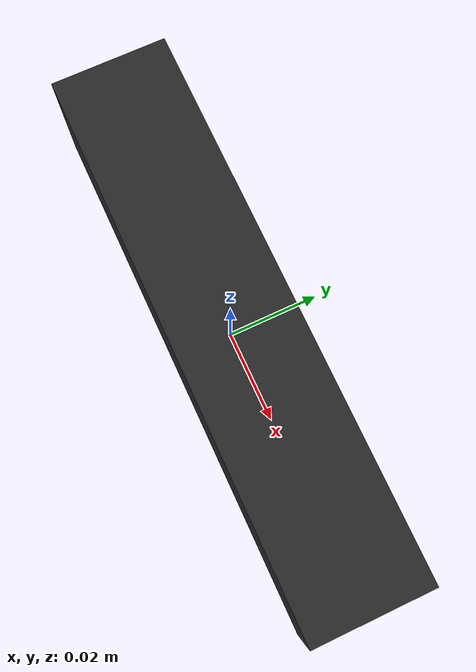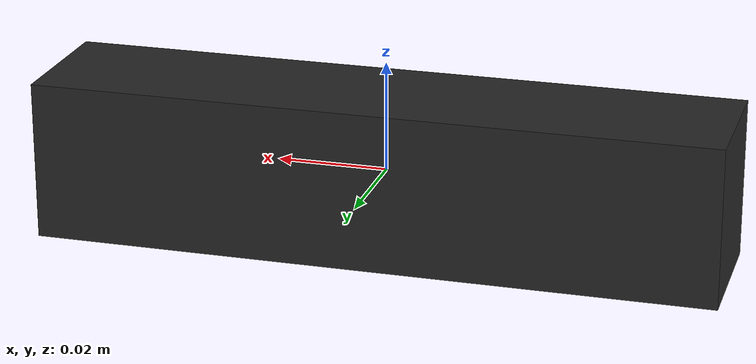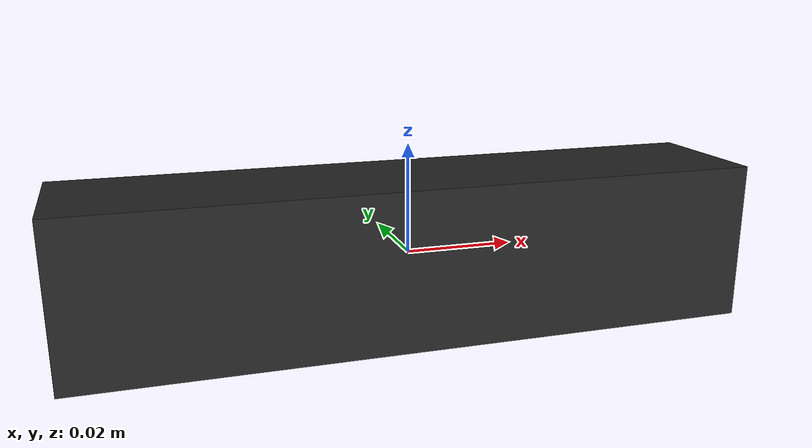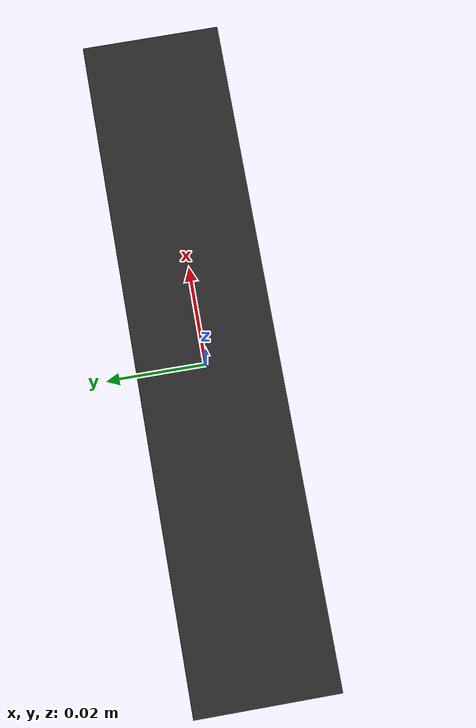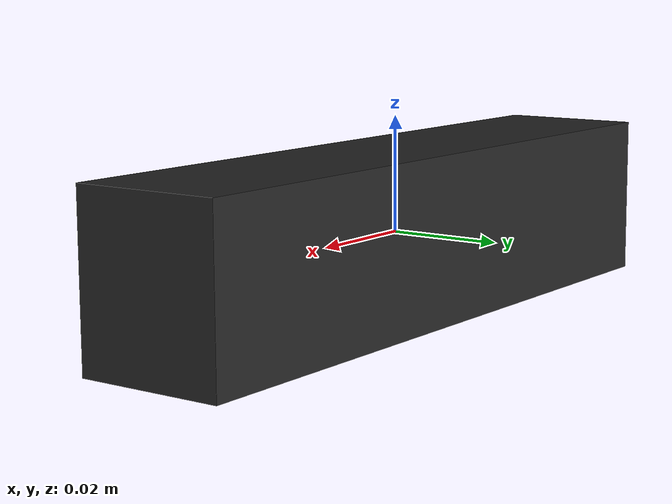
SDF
<?xml version="1.0" encoding="UTF-8"?>
<sdf version="1.9">
  <model name="d455">
    <link name="d455_link">
      <inertial>
        <mass>0.072</mass>
        <inertia>
          <ixx>4.0e-5</ixx><ixy>0</ixy><ixz>0</ixz>
          <iyy>1.3e-5</iyy><iyz>0</iyz><izz>4.5e-5</izz>
        </inertia>
      </inertial>
      <visual name="d455_visual">
        <geometry><box><size>0.124 0.026 0.029</size></box></geometry>
        <material>
          <ambient>0.1 0.1 0.1 1</ambient>
          <diffuse>0.15 0.15 0.15 1</diffuse>
        </material>
      </visual>
      <collision name="d455_collision">
        <geometry><box><size>0.124 0.026 0.029</size></box></geometry>
      </collision>

      <sensor name="infra1" type="camera">
        <gz_frame_id>d455_link</gz_frame_id>
        <pose>0.000000 0.047500 0.000000 0 0 0</pose>
        <update_rate>30</update_rate>
        <always_on>1</always_on>
        <visualize>false</visualize>
        <camera>
          <horizontal_fov>1.518436449</horizontal_fov>
          <image>
            <width>848</width>
            <height>480</height>
      <format>L8</format>
          </image>
          <clip>
            <near>0.2</near>
            <far>20.0</far>
          </clip>
        </camera>
      </sensor>

      <sensor name="infra2" type="camera">
        <gz_frame_id>d455_link</gz_frame_id>
        <pose>0.000000 -0.047500 0.000000 0 0 0</pose>
        <update_rate>30</update_rate>
        <always_on>1</always_on>
        <visualize>false</visualize>
        <camera>
          <horizontal_fov>1.518436449</horizontal_fov>
          <image>
            <width>848</width>
            <height>480</height>
      <format>L8</format>
          </image>
          <clip>
            <near>0.2</near>
            <far>20.0</far>
          </clip>
        </camera>
      </sensor>

      <sensor name="depth" type="depth_camera">
        <gz_frame_id>d455_link</gz_frame_id>
        <pose>0.000000 0.047500 0.000000 0 0 0</pose>
        <update_rate>30</update_rate>
        <always_on>1</always_on>
        <visualize>false</visualize>
        <camera>
          <horizontal_fov>1.518436449</horizontal_fov>
          <image>
            <width>848</width>
            <height>480</height>
      <format>R_FLOAT32</format>
          </image>
          <clip>
            <near>0.2</near>
            <far>20.0</far>
          </clip>
        </camera>
      </sensor>

      <sensor name="d455_imu" type="imu">
        <gz_frame_id>d455_link</gz_frame_id>
        <pose>-0.005520 0.005100 -0.011740 0 0 0</pose>
        <update_rate>200</update_rate>
        <always_on>1</always_on>
        <imu>
          <angular_velocity>
            <x>
              <noise type="gaussian">
                <mean>0</mean>
                <stddev>0.0022627417</stddev>
                <dynamic_bias_stddev>2e-06</dynamic_bias_stddev>
                <dynamic_bias_correlation_time>3600</dynamic_bias_correlation_time>
              </noise>
            </x>
            <y>
              <noise type="gaussian">
                <mean>0</mean>
                <stddev>0.0022627417</stddev>
                <dynamic_bias_stddev>2e-06</dynamic_bias_stddev>
                <dynamic_bias_correlation_time>3600</dynamic_bias_correlation_time>
              </noise>
            </y>
            <z>
              <noise type="gaussian">
                <mean>0</mean>
                <stddev>0.0022627417</stddev>
                <dynamic_bias_stddev>2e-06</dynamic_bias_stddev>
                <dynamic_bias_correlation_time>3600</dynamic_bias_correlation_time>
              </noise>
            </z>
          </angular_velocity>
          <linear_acceleration>
            <x>
              <noise type="gaussian">
                <mean>0</mean>
                <stddev>0.0282842712</stddev>
                <dynamic_bias_stddev>0.0003</dynamic_bias_stddev>
                <dynamic_bias_correlation_time>3600</dynamic_bias_correlation_time>
              </noise>
            </x>
            <y>
              <noise type="gaussian">
                <mean>0</mean>
                <stddev>0.0282842712</stddev>
                <dynamic_bias_stddev>0.0003</dynamic_bias_stddev>
                <dynamic_bias_correlation_time>3600</dynamic_bias_correlation_time>
              </noise>
            </y>
            <z>
              <noise type="gaussian">
                <mean>0</mean>
                <stddev>0.0282842712</stddev>
                <dynamic_bias_stddev>0.0003</dynamic_bias_stddev>
                <dynamic_bias_correlation_time>3600</dynamic_bias_correlation_time>
              </noise>
            </z>
          </linear_acceleration>
        </imu>
      </sensor>
    </link>
  </model>
</sdf>
